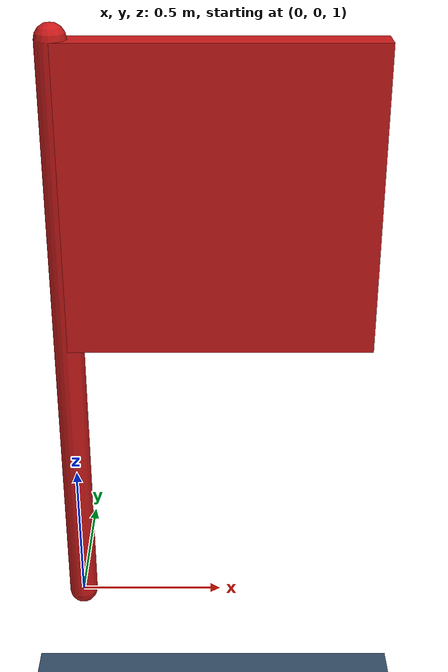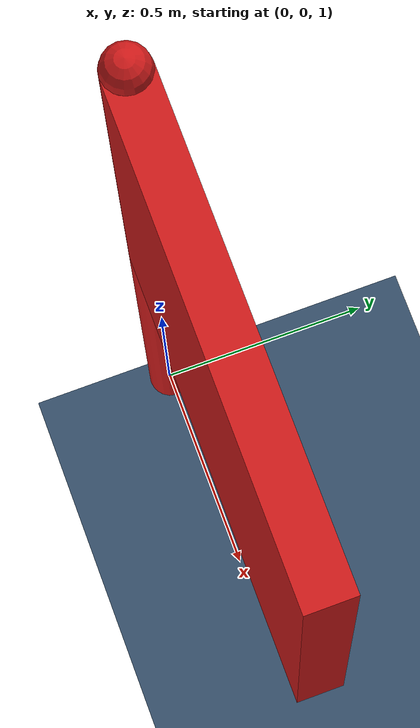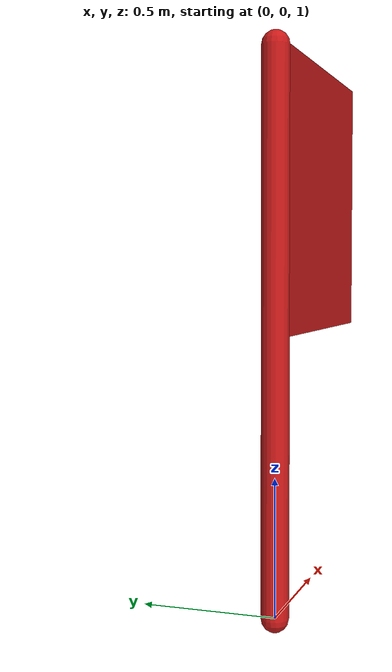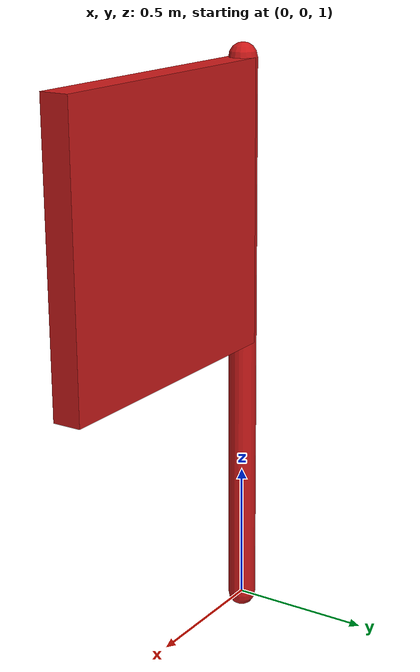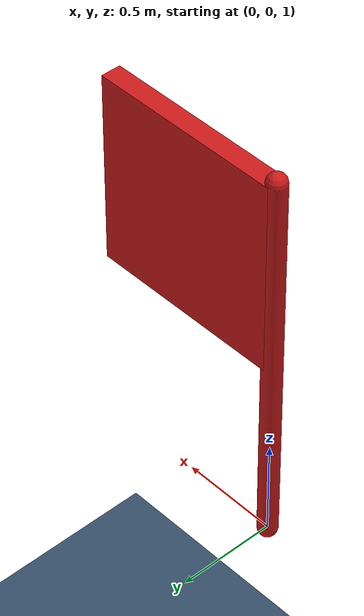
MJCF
<?xml version="1.0"?>
<mujoco>
    <worldbody>
        <!-- Drapeau -->
        <geom type="plane" name="ground" size="5 5 0.1" material="ground_mat" rgba="0.2 0.3 0.4 1"/>
        <body name="flag" pos="0 0 2">
            <!-- Cylindre pour le mât du drapeau -->
            <geom type="capsule" size="0.05 1" material="flag_mat" rgba="0.8 0.1 0.1 1"/>
            <joint type="hinge" axis="0 1 0" pos="0 0 0"/>

            <!-- Boîte en haut du cylindre comme le drapeau -->
            <geom type="box" size="0.5 0.05 0.5" pos="0.5 0 0.5" material="flag_mat" rgba="0.8 0.1 0.1 1"/>
        </body>
    </worldbody>
    <option timestep="0.01" gravity="0 0 0"/>
    <asset>
        <material name="ground_mat" rgba="0.1 0.5 0.1 1"/>
        <material name="flag_mat" rgba="0.8 0.1 0.1 1"/>
    </asset>
</mujoco>
